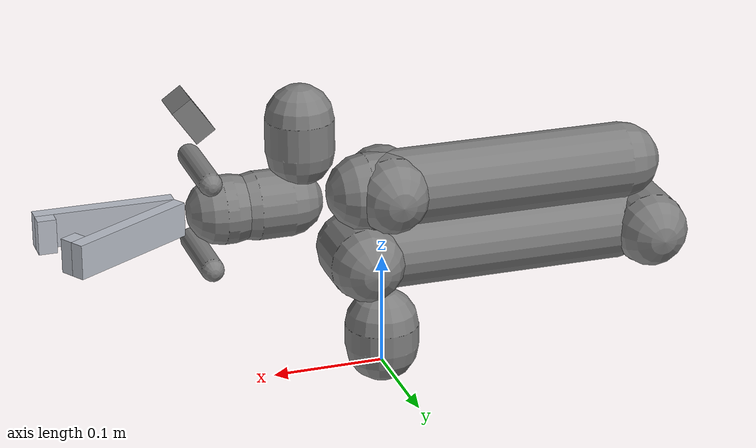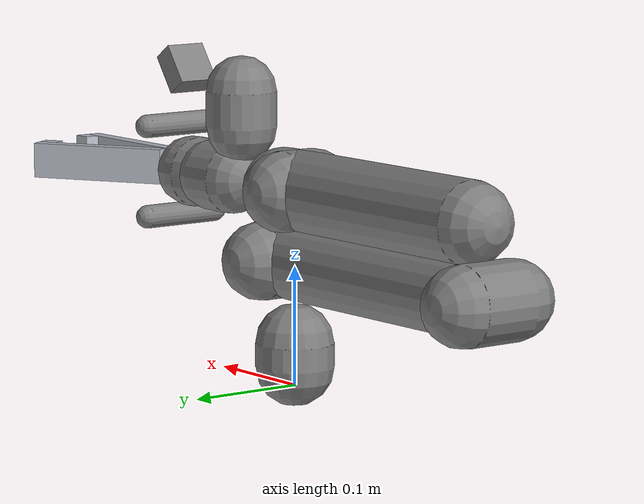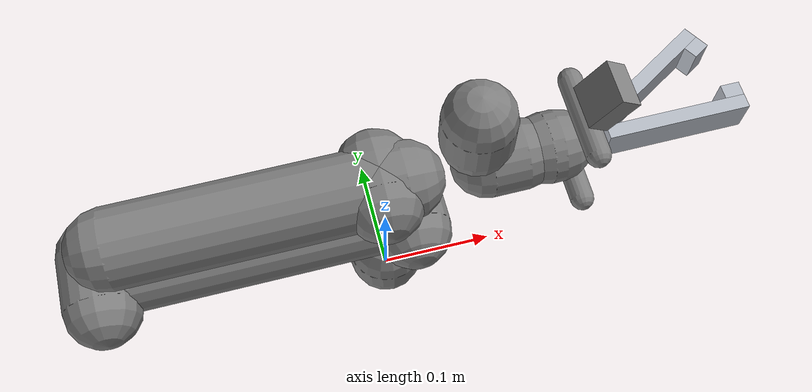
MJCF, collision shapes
<mujoco model="yam_tong">
  <compiler angle="radian" meshdir="assets" />
  <default>
    <default class="yam">
      <site group="5" size="0.005" rgba="0 1 0 1" />
      <joint axis="0 0 1" />
      <default class="visual">
        <geom type="mesh" contype="0" conaffinity="0" density="0" group="2" material="black" />
      </default>
      <default class="collision">
        <geom group="3" type="capsule" />
        <default class="sphere_collision">
          <geom size="0.0006 0 0" type="sphere" rgba="1 0 0 1" group="4" />
        </default>
      </default>
    </default>
  </default>
  <asset>
    <material name="black" rgba="0.25 0.25 0.25 1" />
    <material name="white" rgba="0.9 0.9 0.9 1" />
    <mesh file="model2.stl" />
    <mesh file="model2__2.stl" />
    <mesh file="model2__3.stl" />
    <mesh file="model2__4.stl" />
    <mesh file="model2__5.stl" />
    <mesh file="model2__6.stl" />
    <mesh file="model2__7.stl" />
    <mesh file="model2__8.stl" />
    <mesh file="model2__9.stl" />
    <mesh file="model2__10.stl" />
    <mesh file="model2__11.stl" />
    <mesh file="model2__12.stl" />
    <mesh file="model2__13.stl" />
    <mesh file="model2__14.stl" />
    <mesh file="model2__15.stl" />
    <mesh file="model2__16.stl" />
    <mesh file="model2__17.stl" />
    <mesh name="camera_d405" file="d405.stl" />
  </asset>
  <worldbody>
    <light name="spotlight" mode="targetbodycom" target="link_6" pos="0 0 1" />
    <camera name="front_cam" pos="1.1 0 .5" xyaxes="0 1 0 -0.3 0 0.7" />
    <body name="arm" childclass="yam">
      <geom class="visual" pos="0 0 -0.0006" quat="1 0 0 1" mesh="model2" />
      <geom name="base_collision" class="collision" size="0.033 0.01" pos="0.0 0.0 0.026" quat="1 0 0 0" />
      <body name="link_1" pos="0 0 0.0631" quat="1 0 0 1">
        <inertial pos="-0.00192861 -0.00795735 0.0208176" quat="0.297851 0.642634 0.360045 0.607185" mass="0.12415" diaginertia="0.000180751 0.000145532 5.89179e-05" />
        <joint name="joint1" range="-2.61799 3.05433" />
        <geom class="visual" pos="5.26159e-07 2.34355e-07 -0.0632" quat="1 0 0 0" mesh="model2__2" />
        <body name="link_2" pos="2.5e-05 -0.02 0.0409" quat="1 1 1 1">
          <inertial pos="0.132008 2.10599e-06 0.000293073" quat="1 1 1 1" mass="1.24434" diaginertia="0.0121902 0.0121318 0.000683304" />
          <joint name="joint2" range="0 3.66519" />
          <geom class="visual" pos="0.0199992 -0.1041 -2.44738e-05" quat="1 -1 -1 -1" mesh="model2__3" />
          <geom class="visual" pos="0.0199992 -0.1041 -2.44738e-05" quat="1 -1 -1 -1" mesh="model2__4" />
          <geom class="visual" pos="0.0199992 -0.1041 -2.44738e-05" quat="1 -1 -1 -1" mesh="model2__5" material="white" />
          <geom name="link2_1_collision" class="collision" size="0.032 0.11" pos="0.13 0 0" quat="1 0 1 0" />
          <geom name="link2_2_collision" class="collision" size="0.033 0.02" pos="0 0.0 0" quat="1 0 0 0" />
          <geom name="link2_3_collision" class="collision" size="0.033 0.025" pos="0.265 0 0" quat="1 0 0 0" />
          <body name="link_3" pos="0.264 0 0" quat="0 1 0 0">
            <inertial pos="-0.121816 -0.054846 -0.000111108" quat="1 1 1 1" mass="0.853698" diaginertia="0.00699732 0.00696112 0.000788244" />
            <joint name="joint3" range="0 3.66519" />
            <geom class="visual" pos="-0.244001 0.104101 2.44738e-05" quat="1 1 1 -1" mesh="model2__6" />
            <geom class="visual" pos="-0.244001 0.104101 2.44738e-05" quat="1 1 1 -1" mesh="model2__7" />
            <geom class="visual" pos="-0.244001 0.104101 2.44738e-05" quat="1 1 1 -1" mesh="model2__8" material="white" />
            <geom class="visual" pos="-0.244001 0.104101 2.44738e-05" quat="1 1 1 -1" mesh="model2__9" />
            <geom name="link3_1_collision" class="collision" size="0.034 0.12" pos="-0.14 -0.06 0.0" quat="1 0 1 0" />
            <geom name="link3_2_collision" class="collision" size="0.034 0.015" pos="-0.24 -0.06 0.0" quat="1 0 0 0" />
            <body name="link_4" pos="-0.245 -0.06 0" quat="1 0 0 0">
              <inertial pos="-0.0769778 -0.0527104 0.000154878" quat="0.667 0.667 -0.236 -0.236" mass="0.463511" diaginertia="0.000791532 0.000744733 0.000282116" />
              <joint name="joint4" range="-1.5708 1.5708" />
              <geom class="visual" pos="0.00100023 0.164101 2.44738e-05" quat="1 1 1 -1" mesh="model2__10" />
              <geom name="link4_1_collision" class="collision" size="0.03 0.015" pos="-0.073 -0.06 0.0" quat="1 1 0 0" />
              <body name="link_5" pos="-0.074 -0.0395 2.5e-05" quat="1 -1 1 1">
                <inertial pos="3.64861e-05 0.00025665 0.0353526" quat="1 0 0 0" mass="0.350962" diaginertia="0.000197802 0.0001775 0.000147402" />
                <joint name="joint5" range="-1.5708 1.5708" />
                <geom class="visual" pos="0 -0.0749971 0.203601" quat="1.32679e-06 1 0 0" mesh="model2__11" />
                <geom name="link5_1_collision" class="collision" size="0.030 0.015" pos="0 0.025 0.0395" quat="1 1 0 0" />
                <body name="link_6" pos="0 0.0353 0.0395" quat="1 -1 0 0">
                  <inertial pos="-0.000217767 7.37059e-05 0.0270545" quat="1 1 0 0" mass="0.367476" diaginertia="0.000265958 0.000242686 0.000227409" />
                  <joint name="joint6" range="-2.0944 2.0944" />
                  <geom class="visual" pos="0 -0.164101 -0.110597" quat="1 -1 0 0" mesh="model2__12" />
                  <geom class="visual" pos="0 -0.164101 -0.110597" quat="1 -1 0 0" mesh="model2__13" />
                  <geom name="link6_1_collision" class="collision" size="0.01 0.035" pos="0 0.039 0.052" quat="1 0 1 0" />
                  <geom name="link6_2_collision" class="collision" size="0.030 0.005" pos="0 0.0 0.03" quat="1 0 0 1" />
                  <geom name="link6_3_collision" class="collision" size="0.01 0.035" pos="0 -0.039 0.052" quat="1 0 1 0" />
                  <site name="tcp_site" quat="1 0 0 -1" />
                  <body name="camera_d405" pos="-0.0107 0.079729 0.066021" quat="0.953717 0.3007058 0 0">
                    <geom class="visual" mesh="camera_d405" />
                    <geom class="collision" type="box" size=".018 .018 .01" pos="0 0 -0.01" group="4" />
                    <body name="camera_frame" pos="0.009 0 0" quat="0 0 0 1">
                      <camera name="camera_d405" pos="0 0 0" quat="0 1 0 0" resolution="1280 720" sensorsize="0.003896 0.00214" focal="0.00193 0.00193" />
                    </body>
                  </body>
                  <body name="tong_base" pos="0 0 0.075" quat="0.5 0.5 -0.5 0.5">
                    <inertial pos="0.06 0 0" mass="0.11664" diaginertia="1.01477e-05 1.48716e-04 1.41368e-04" />
                    <geom name="tong_base_arm" size="0.06 0.006 0.015" pos="0.06 0.006 0" type="box" rgba="0.72 0.74 0.78 1" friction="0.9 0.005 0.0001" contype="1" conaffinity="1" condim="3" group="3" />
                    <geom name="tong_base_pad" size="0.008 0.006 0.015" pos="0.112 -0.006 0" type="box" rgba="0.72 0.74 0.78 1" friction="0.9 0.005 0.0001" contype="1" conaffinity="1" condim="3" group="3" />
                    <site name="grasp_site" pos="0.112 0 0.0185" />
                    <body name="tong_jaw" pos="0 0 0" quat="0.963019 0 0 -0.269434">
                      <joint name="tong_hinge" type="hinge" axis="0 0 1" range="-0.15 0.3244" stiffness="1.9476" damping="0.03116" />
                      <inertial pos="0.06 0 0" mass="0.11664" diaginertia="1.01477e-05 1.48716e-04 1.41368e-04" />
                      <geom name="tong_jaw_arm" size="0.06 0.006 0.015" pos="0.06 -0.006 0" type="box" rgba="0.72 0.74 0.78 1" friction="0.9 0.005 0.0001" contype="1" conaffinity="1" condim="3" group="3" />
                      <geom name="tong_jaw_pad" size="0.008 0.006 0.015" pos="0.112 0.006 0" type="box" rgba="0.72 0.74 0.78 1" friction="0.9 0.005 0.0001" contype="1" conaffinity="1" condim="3" group="3" />
                    </body>
                  </body>
                </body>
              </body>
            </body>
          </body>
        </body>
      </body>
    </body>
  </worldbody>
  <contact>
    <exclude body1="tong_base" body2="tong_jaw" />
  </contact>
</mujoco>
